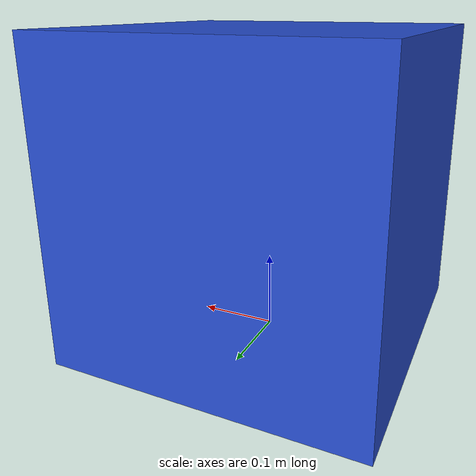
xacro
<?xml version="1.0"?>

<robot name="robot_name" xmlns:xacro="http://www.ros.org/wiki/xacro">

    <xacro:arg name="color" default="Blue"/>
    <xacro:arg name="x" default="0.0"/>
    <xacro:arg name="y" default="0.0"/>
    <xacro:arg name="z" default="0.0"/>
    <xacro:property name="pi" value="3.1415926535897931" />
    <xacro:property name="color" value="$(arg color)"/>
    <xacro:property name="x" value="$(arg x)"/>
    <xacro:property name="y" value="$(arg y)"/>
    <xacro:property name="z" value="$(arg z)"/>
    <xacro:property name="d" value="0.4"/>
    <xacro:property name="l" value="0.4"/>
    <xacro:property name="h" value="0.4"/>

    <link name="my_box">
        <inertial>
            <origin xyz="${x} ${y} ${z}"/>
            <mass value="1.0" />
            <inertia  ixx="1.0" ixy="0.0"  ixz="0.0"  iyy="100.0"  iyz="0.0"  izz="1.0" />
        </inertial>
        <visual>
            <origin xyz="${x} ${y} ${z+h/2}"/>
            <geometry>
                <box size="${d} ${l} ${h}" />
            </geometry>
        </visual>
        <collision>
            <origin xyz="${x} ${y} ${z+h/2}"/>
            <geometry>
                <box size="${d} ${l} ${h}" />
            </geometry>
        </collision>
    </link>
    <gazebo reference="my_box">
        <material>Gazebo/${color}</material>
    </gazebo>
</robot>
